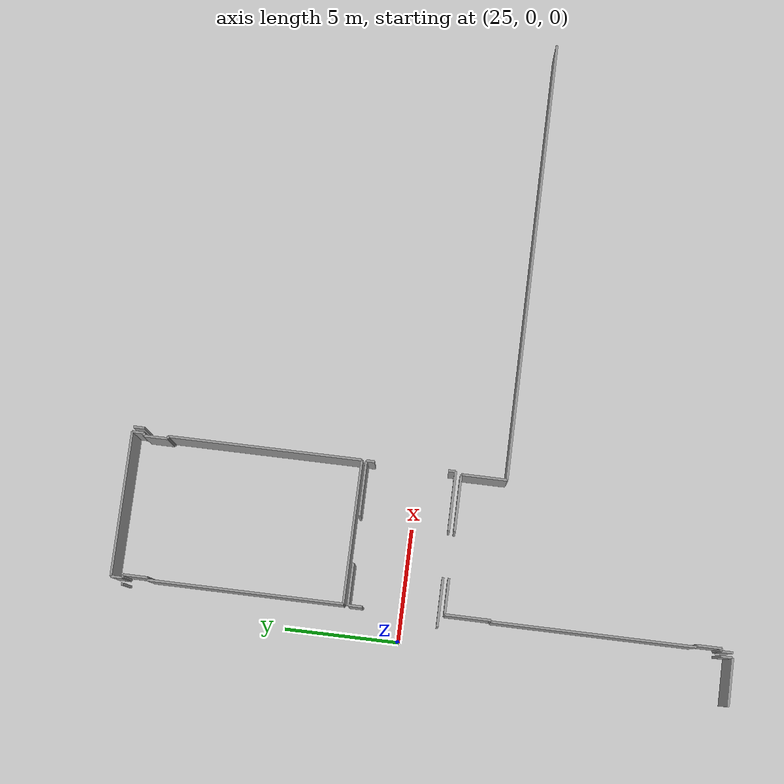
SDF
<sdf version="1.6">
 <world name="default">
  <model name="ground_plane">
   <static>1</static>
   <link name="link">
    <collision name="collision">
     <geometry><plane><normal>0 0 1</normal><size>100 100</size></plane></geometry>
     <surface><friction><ode><mu>100</mu><mu2>50</mu2></ode></friction></surface>
    </collision>
    <visual name="visual">
     <cast_shadows>0</cast_shadows>
     <geometry><plane><normal>0 0 1</normal><size>100 100</size></plane></geometry>
     <material>
      <script><uri>file://media/materials/scripts/gazebo.material</uri><name>Gazebo/Grey</name></script>
     </material>
    </visual>
   </link>
  </model>
  <model name="0510040946_A-40">
   <static>1</static>
   <link name="Wall_152">
    <collision name="Wall_152_Collision">
     <geometry><box><size>0.108435797764 0.1 2.5</size></box></geometry>
     <pose>0.054217898882 0 1.25 0 0 0</pose>
    </collision>
    <visual name="Wall_152_Visual">
     <pose>0.054217898882 0 1.25 0 0 0</pose>
     <geometry><box><size>0.108435797764 0.1 2.5</size></box></geometry>
     <material>
      <script><uri>file://media/materials/scripts/gazebo.material</uri><name>Gazebo/Grey</name></script>
      <ambient>1 1 1 1</ambient>
     </material>
    </visual>
    <pose>84.4169514956 -0.542305814315 0 0 0 3.14159265359</pose>
   </link>
   <link name="Wall_157">
    <collision name="Wall_157_Collision">
     <geometry><box><size>0.608762373412 0.1 2.5</size></box></geometry>
     <pose>0.304381186706 0 1.25 0 0 0</pose>
    </collision>
    <visual name="Wall_157_Visual">
     <pose>0.304381186706 0 1.25 0 0 0</pose>
     <geometry><box><size>0.608762373412 0.1 2.5</size></box></geometry>
     <material>
      <script><uri>file://media/materials/scripts/gazebo.material</uri><name>Gazebo/Grey</name></script>
      <ambient>1 1 1 1</ambient>
     </material>
    </visual>
    <pose>84.6420667483 -10.8241754758 0 0 0 1.57079632679</pose>
   </link>
   <link name="Wall_158">
    <collision name="Wall_158_Collision">
     <geometry><box><size>1.80117567233 0.1 2.5</size></box></geometry>
     <pose>0.900587836167 0 1.25 0 0 0</pose>
    </collision>
    <visual name="Wall_158_Visual">
     <pose>0.900587836167 0 1.25 0 0 0</pose>
     <geometry><box><size>1.80117567233 0.1 2.5</size></box></geometry>
     <material>
      <script><uri>file://media/materials/scripts/gazebo.material</uri><name>Gazebo/Grey</name></script>
      <ambient>1 1 1 1</ambient>
     </material>
    </visual>
    <pose>84.6420667483 -10.2154131023 0 0 0 0.0</pose>
   </link>
   <link name="Wall_159">
    <collision name="Wall_159_Collision">
     <geometry><box><size>2.39319708048 0.1 2.5</size></box></geometry>
     <pose>1.19659854024 0 1.25 0 0 0</pose>
    </collision>
    <visual name="Wall_159_Visual">
     <pose>1.19659854024 0 1.25 0 0 0</pose>
     <geometry><box><size>2.39319708048 0.1 2.5</size></box></geometry>
     <material>
      <script><uri>file://media/materials/scripts/gazebo.material</uri><name>Gazebo/Grey</name></script>
      <ambient>1 1 1 1</ambient>
     </material>
    </visual>
    <pose>88.4864011364 -10.2154131023 0 0 0 0.0</pose>
   </link>
   <link name="Wall_160">
    <collision name="Wall_160_Collision">
     <geometry><box><size>0.358662498335 0.1 2.5</size></box></geometry>
     <pose>0.179331249168 0 1.25 0 0 0</pose>
    </collision>
    <visual name="Wall_160_Visual">
     <pose>0.179331249168 0 1.25 0 0 0</pose>
     <geometry><box><size>0.358662498335 0.1 2.5</size></box></geometry>
     <material>
      <script><uri>file://media/materials/scripts/gazebo.material</uri><name>Gazebo/Grey</name></script>
      <ambient>1 1 1 1</ambient>
     </material>
    </visual>
    <pose>90.8795982168 -10.2154131023 0 0 0 -1.57079632679</pose>
   </link>
   <link name="Wall_161">
    <collision name="Wall_161_Collision">
     <geometry><box><size>0.316936910658 0.1 2.5</size></box></geometry>
     <pose>0.158468455329 0 1.25 0 0 0</pose>
    </collision>
    <visual name="Wall_161_Visual">
     <pose>0.158468455329 0 1.25 0 0 0</pose>
     <geometry><box><size>0.316936910658 0.1 2.5</size></box></geometry>
     <material>
      <script><uri>file://media/materials/scripts/gazebo.material</uri><name>Gazebo/Grey</name></script>
      <ambient>1 1 1 1</ambient>
     </material>
    </visual>
    <pose>90.8795982168 -13.7845361675 0 0 0 -1.57079632679</pose>
   </link>
   <link name="Wall_162">
    <collision name="Wall_162_Collision">
     <geometry><box><size>2.56834308833 0.1 2.5</size></box></geometry>
     <pose>1.28417154416 0 1.25 0 0 0</pose>
    </collision>
    <visual name="Wall_162_Visual">
     <pose>1.28417154416 0 1.25 0 0 0</pose>
     <geometry><box><size>2.56834308833 0.1 2.5</size></box></geometry>
     <material>
      <script><uri>file://media/materials/scripts/gazebo.material</uri><name>Gazebo/Grey</name></script>
      <ambient>1 1 1 1</ambient>
     </material>
    </visual>
    <pose>90.8795982168 -14.1014730781 0 0 0 3.14159265359</pose>
   </link>
   <link name="Wall_163">
    <collision name="Wall_163_Collision">
     <geometry><box><size>2.10543003355 0.1 2.5</size></box></geometry>
     <pose>1.05271501677 0 1.25 0 0 0</pose>
    </collision>
    <visual name="Wall_163_Visual">
     <pose>1.05271501677 0 1.25 0 0 0</pose>
     <geometry><box><size>2.10543003355 0.1 2.5</size></box></geometry>
     <material>
      <script><uri>file://media/materials/scripts/gazebo.material</uri><name>Gazebo/Grey</name></script>
      <ambient>1 1 1 1</ambient>
     </material>
    </visual>
    <pose>86.2975199275 -14.1014730781 0 0 0 3.14159265359</pose>
   </link>
   <link name="Wall_272">
    <collision name="Wall_272_Collision">
     <geometry><box><size>0.512628648611 0.1 2.5</size></box></geometry>
     <pose>0.256314324305 0 1.25 0 0 0</pose>
    </collision>
    <visual name="Wall_272_Visual">
     <pose>0.256314324305 0 1.25 0 0 0</pose>
     <geometry><box><size>0.512628648611 0.1 2.5</size></box></geometry>
     <material>
      <script><uri>file://media/materials/scripts/gazebo.material</uri><name>Gazebo/Grey</name></script>
      <ambient>1 1 1 1</ambient>
     </material>
    </visual>
    <pose>84.4194880055 -26.181728251 0 0 0 -1.57079632679</pose>
   </link>
   <link name="Wall_273">
    <collision name="Wall_273_Collision">
     <geometry><box><size>2.06725555971 0.1 2.5</size></box></geometry>
     <pose>1.03362777986 0 1.25 0 0 0</pose>
    </collision>
    <visual name="Wall_273_Visual">
     <pose>1.03362777986 0 1.25 0 0 0</pose>
     <geometry><box><size>2.06725555971 0.1 2.5</size></box></geometry>
     <material>
      <script><uri>file://media/materials/scripts/gazebo.material</uri><name>Gazebo/Grey</name></script>
      <ambient>1 1 1 1</ambient>
     </material>
    </visual>
    <pose>84.4194880055 -26.6943568996 0 0 0 3.14159265359</pose>
   </link>
   <link name="Wall_275">
    <collision name="Wall_275_Collision">
     <geometry><box><size>8.43592458956 0.1 2.5</size></box></geometry>
     <pose>4.21796229478 0 1.25 0 0 0</pose>
    </collision>
    <visual name="Wall_275_Visual">
     <pose>4.21796229478 0 1.25 0 0 0</pose>
     <geometry><box><size>8.43592458956 0.1 2.5</size></box></geometry>
     <material>
      <script><uri>file://media/materials/scripts/gazebo.material</uri><name>Gazebo/Grey</name></script>
      <ambient>1 1 1 1</ambient>
     </material>
    </visual>
    <pose>84.6660367667 -10.0041218286 0 0 0 1.57079632679</pose>
   </link>
   <link name="Wall_276">
    <collision name="Wall_276_Collision">
     <geometry><box><size>0.0960068993069 0.1 2.5</size></box></geometry>
     <pose>0.0480034496535 0 1.25 0 0 0</pose>
    </collision>
    <visual name="Wall_276_Visual">
     <pose>0.0480034496535 0 1.25 0 0 0</pose>
     <geometry><box><size>0.0960068993069 0.1 2.5</size></box></geometry>
     <material>
      <script><uri>file://media/materials/scripts/gazebo.material</uri><name>Gazebo/Grey</name></script>
      <ambient>1 1 1 1</ambient>
     </material>
    </visual>
    <pose>84.6660367667 -1.56819723901 0 0 0 0.0</pose>
   </link>
   <link name="Wall_277">
    <collision name="Wall_277_Collision">
     <geometry><box><size>1.04732493326 0.1 2.5</size></box></geometry>
     <pose>0.523662466629 0 1.25 0 0 0</pose>
    </collision>
    <visual name="Wall_277_Visual">
     <pose>0.523662466629 0 1.25 0 0 0</pose>
     <geometry><box><size>1.04732493326 0.1 2.5</size></box></geometry>
     <material>
      <script><uri>file://media/materials/scripts/gazebo.material</uri><name>Gazebo/Grey</name></script>
      <ambient>1 1 1 1</ambient>
     </material>
    </visual>
    <pose>84.762043666 -1.56819723901 0 0 0 1.57079632679</pose>
   </link>
   <link name="Wall_278">
    <collision name="Wall_278_Collision">
     <geometry><box><size>0.13164486325 0.1 2.5</size></box></geometry>
     <pose>0.0658224316252 0 1.25 0 0 0</pose>
    </collision>
    <visual name="Wall_278_Visual">
     <pose>0.0658224316252 0 1.25 0 0 0</pose>
     <geometry><box><size>0.13164486325 0.1 2.5</size></box></geometry>
     <material>
      <script><uri>file://media/materials/scripts/gazebo.material</uri><name>Gazebo/Grey</name></script>
      <ambient>1 1 1 1</ambient>
     </material>
    </visual>
    <pose>84.762043666 -0.520872305751 0 0 0 3.14159265359</pose>
   </link>
   <link name="Wall_279">
    <collision name="Wall_279_Collision">
     <geometry><box><size>0.515418809489 0.1 2.5</size></box></geometry>
     <pose>0.257709404745 0 1.25 0 0 0</pose>
    </collision>
    <visual name="Wall_279_Visual">
     <pose>0.257709404745 0 1.25 0 0 0</pose>
     <geometry><box><size>0.515418809489 0.1 2.5</size></box></geometry>
     <material>
      <script><uri>file://media/materials/scripts/gazebo.material</uri><name>Gazebo/Grey</name></script>
      <ambient>1 1 1 1</ambient>
     </material>
    </visual>
    <pose>84.6303988028 -0.520872305751 0 0 0 1.57079632679</pose>
   </link>
   <link name="Wall_280">
    <collision name="Wall_280_Collision">
     <geometry><box><size>6.2781156268 0.1 2.5</size></box></geometry>
     <pose>3.1390578134 0 1.25 0 0 0</pose>
    </collision>
    <visual name="Wall_280_Visual">
     <pose>3.1390578134 0 1.25 0 0 0</pose>
     <geometry><box><size>6.2781156268 0.1 2.5</size></box></geometry>
     <material>
      <script><uri>file://media/materials/scripts/gazebo.material</uri><name>Gazebo/Grey</name></script>
      <ambient>1 1 1 1</ambient>
     </material>
    </visual>
    <pose>84.6303988028 -0.00545349626182 0 0 0 0.0</pose>
   </link>
   <link name="Wall_281">
    <collision name="Wall_281_Collision">
     <geometry><box><size>0.520872305751 0.1 2.5</size></box></geometry>
     <pose>0.260436152875 0 1.25 0 0 0</pose>
    </collision>
    <visual name="Wall_281_Visual">
     <pose>0.260436152875 0 1.25 0 0 0</pose>
     <geometry><box><size>0.520872305751 0.1 2.5</size></box></geometry>
     <material>
      <script><uri>file://media/materials/scripts/gazebo.material</uri><name>Gazebo/Grey</name></script>
      <ambient>1 1 1 1</ambient>
     </material>
    </visual>
    <pose>90.9085144296 -0.00545349626182 0 0 0 -1.57079632679</pose>
   </link>
   <link name="Wall_282">
    <collision name="Wall_282_Collision">
     <geometry><box><size>0.120737870727 0.1 2.5</size></box></geometry>
     <pose>0.0603689353634 0 1.25 0 0 0</pose>
    </collision>
    <visual name="Wall_282_Visual">
     <pose>0.0603689353634 0 1.25 0 0 0</pose>
     <geometry><box><size>0.120737870727 0.1 2.5</size></box></geometry>
     <material>
      <script><uri>file://media/materials/scripts/gazebo.material</uri><name>Gazebo/Grey</name></script>
      <ambient>1 1 1 1</ambient>
     </material>
    </visual>
    <pose>90.9085144296 -0.526325802013 0 0 0 3.14159265359</pose>
   </link>
   <link name="Wall_283">
    <collision name="Wall_283_Collision">
     <geometry><box><size>1.05138334908 0.1 2.5</size></box></geometry>
     <pose>0.52569167454 0 1.25 0 0 0</pose>
    </collision>
    <visual name="Wall_283_Visual">
     <pose>0.52569167454 0 1.25 0 0 0</pose>
     <geometry><box><size>1.05138334908 0.1 2.5</size></box></geometry>
     <material>
      <script><uri>file://media/materials/scripts/gazebo.material</uri><name>Gazebo/Grey</name></script>
      <ambient>1 1 1 1</ambient>
     </material>
    </visual>
    <pose>90.7877765588 -0.526325802013 0 0 0 -1.57079632679</pose>
   </link>
   <link name="Wall_284">
    <collision name="Wall_284_Collision">
     <geometry><box><size>0.102601825019 0.1 2.5</size></box></geometry>
     <pose>0.0513009125094 0 1.25 0 0 0</pose>
    </collision>
    <visual name="Wall_284_Visual">
     <pose>0.0513009125094 0 1.25 0 0 0</pose>
     <geometry><box><size>0.102601825019 0.1 2.5</size></box></geometry>
     <material>
      <script><uri>file://media/materials/scripts/gazebo.material</uri><name>Gazebo/Grey</name></script>
      <ambient>1 1 1 1</ambient>
     </material>
    </visual>
    <pose>90.7877765588 -1.57770915109 0 0 0 0.0</pose>
   </link>
   <link name="Wall_285">
    <collision name="Wall_285_Collision">
     <geometry><box><size>8.44518285066 0.1 2.5</size></box></geometry>
     <pose>4.22259142533 0 1.25 0 0 0</pose>
    </collision>
    <visual name="Wall_285_Visual">
     <pose>4.22259142533 0 1.25 0 0 0</pose>
     <geometry><box><size>8.44518285066 0.1 2.5</size></box></geometry>
     <material>
      <script><uri>file://media/materials/scripts/gazebo.material</uri><name>Gazebo/Grey</name></script>
      <ambient>1 1 1 1</ambient>
     </material>
    </visual>
    <pose>90.8903783839 -1.57770915109 0 0 0 -1.57079632679</pose>
   </link>
   <link name="Wall_286">
    <collision name="Wall_286_Collision">
     <geometry><box><size>6.22436991883 0.1 2.5</size></box></geometry>
     <pose>3.11218495941 0 1.25 0 0 0</pose>
    </collision>
    <visual name="Wall_286_Visual">
     <pose>3.11218495941 0 1.25 0 0 0</pose>
     <geometry><box><size>6.22436991883 0.1 2.5</size></box></geometry>
     <material>
      <script><uri>file://media/materials/scripts/gazebo.material</uri><name>Gazebo/Grey</name></script>
      <ambient>1 1 1 1</ambient>
     </material>
    </visual>
    <pose>90.8903783839 -10.0228920018 0 0 0 3.13857705492</pose>
   </link>
   <link name="Wall_287">
    <collision name="Wall_287_Collision">
     <geometry><box><size>0.491068314553 0.1 2.5</size></box></geometry>
     <pose>0.245534157276 0 1.25 0 0 0</pose>
    </collision>
    <visual name="Wall_287_Visual">
     <pose>0.245534157276 0 1.25 0 0 0</pose>
     <geometry><box><size>0.491068314553 0.1 2.5</size></box></geometry>
     <material>
      <script><uri>file://media/materials/scripts/gazebo.material</uri><name>Gazebo/Grey</name></script>
      <ambient>1 1 1 1</ambient>
     </material>
    </visual>
    <pose>84.6301451518 -26.6850986385 0 0 0 1.57079632679</pose>
   </link>
   <link name="Wall_288">
    <collision name="Wall_288_Collision">
     <geometry><box><size>0.124035333583 0.1 2.5</size></box></geometry>
     <pose>0.0620176667914 0 1.25 0 0 0</pose>
    </collision>
    <visual name="Wall_288_Visual">
     <pose>0.0620176667914 0 1.25 0 0 0</pose>
     <geometry><box><size>0.124035333583 0.1 2.5</size></box></geometry>
     <material>
      <script><uri>file://media/materials/scripts/gazebo.material</uri><name>Gazebo/Grey</name></script>
      <ambient>1 1 1 1</ambient>
     </material>
    </visual>
    <pose>84.6301451518 -26.194030324 0 0 0 0.0</pose>
   </link>
   <link name="Wall_289">
    <collision name="Wall_289_Collision">
     <geometry><box><size>1.06317812007 0.1 2.5</size></box></geometry>
     <pose>0.531589060033 0 1.25 0 0 0</pose>
    </collision>
    <visual name="Wall_289_Visual">
     <pose>0.531589060033 0 1.25 0 0 0</pose>
     <geometry><box><size>1.06317812007 0.1 2.5</size></box></geometry>
     <material>
      <script><uri>file://media/materials/scripts/gazebo.material</uri><name>Gazebo/Grey</name></script>
      <ambient>1 1 1 1</ambient>
     </material>
    </visual>
    <pose>84.7541804854 -26.194030324 0 0 0 1.57079632679</pose>
   </link>
   <link name="Wall_290">
    <collision name="Wall_290_Collision">
     <geometry><box><size>0.0715295788759 0.1 2.5</size></box></geometry>
     <pose>0.035764789438 0 1.25 0 0 0</pose>
    </collision>
    <visual name="Wall_290_Visual">
     <pose>0.035764789438 0 1.25 0 0 0</pose>
     <geometry><box><size>0.0715295788759 0.1 2.5</size></box></geometry>
     <material>
      <script><uri>file://media/materials/scripts/gazebo.material</uri><name>Gazebo/Grey</name></script>
      <ambient>1 1 1 1</ambient>
     </material>
    </visual>
    <pose>84.7541804854 -25.1308522039 0 0 0 3.14159265359</pose>
   </link>
   <link name="Wall_291">
    <collision name="Wall_291_Collision">
     <geometry><box><size>8.79331883295 0.1 2.5</size></box></geometry>
     <pose>4.39665941648 0 1.25 0 0 0</pose>
    </collision>
    <visual name="Wall_291_Visual">
     <pose>4.39665941648 0 1.25 0 0 0</pose>
     <geometry><box><size>8.79331883295 0.1 2.5</size></box></geometry>
     <material>
      <script><uri>file://media/materials/scripts/gazebo.material</uri><name>Gazebo/Grey</name></script>
      <ambient>1 1 1 1</ambient>
     </material>
    </visual>
    <pose>84.6826509065 -25.1308522039 0 0 0 1.57079632679</pose>
   </link>
   <link name="Wall_292">
    <collision name="Wall_292_Collision">
     <geometry><box><size>0.0598616333855 0.1 2.5</size></box></geometry>
     <pose>0.0299308166928 0 1.25 0 0 0</pose>
    </collision>
    <visual name="Wall_292_Visual">
     <pose>0.0299308166928 0 1.25 0 0 0</pose>
     <geometry><box><size>0.0598616333855 0.1 2.5</size></box></geometry>
     <material>
      <script><uri>file://media/materials/scripts/gazebo.material</uri><name>Gazebo/Grey</name></script>
      <ambient>1 1 1 1</ambient>
     </material>
    </visual>
    <pose>84.6826509065 -16.337533371 0 0 0 0.0</pose>
   </link>
   <link name="Wall_293">
    <collision name="Wall_293_Collision">
     <geometry><box><size>1.98266295491 0.1 2.5</size></box></geometry>
     <pose>0.991331477454 0 1.25 0 0 0</pose>
    </collision>
    <visual name="Wall_293_Visual">
     <pose>0.991331477454 0 1.25 0 0 0</pose>
     <geometry><box><size>1.98266295491 0.1 2.5</size></box></geometry>
     <material>
      <script><uri>file://media/materials/scripts/gazebo.material</uri><name>Gazebo/Grey</name></script>
      <ambient>1 1 1 1</ambient>
     </material>
    </visual>
    <pose>84.7425125399 -16.337533371 0 0 0 1.57079632679</pose>
   </link>
   <link name="Wall_294">
    <collision name="Wall_294_Collision">
     <geometry><box><size>1.55640246802 0.1 2.5</size></box></geometry>
     <pose>0.778201234012 0 1.25 0 0 0</pose>
    </collision>
    <visual name="Wall_294_Visual">
     <pose>0.778201234012 0 1.25 0 0 0</pose>
     <geometry><box><size>1.55640246802 0.1 2.5</size></box></geometry>
     <material>
      <script><uri>file://media/materials/scripts/gazebo.material</uri><name>Gazebo/Grey</name></script>
      <ambient>1 1 1 1</ambient>
     </material>
    </visual>
    <pose>84.7425125399 -14.3548704161 0 0 0 0.0</pose>
   </link>
   <link name="Wall_295">
    <collision name="Wall_295_Collision">
     <geometry><box><size>2.47994571869 0.1 2.5</size></box></geometry>
     <pose>1.23997285934 0 1.25 0 0 0</pose>
    </collision>
    <visual name="Wall_295_Visual">
     <pose>1.23997285934 0 1.25 0 0 0</pose>
     <geometry><box><size>2.47994571869 0.1 2.5</size></box></geometry>
     <material>
      <script><uri>file://media/materials/scripts/gazebo.material</uri><name>Gazebo/Grey</name></script>
      <ambient>1 1 1 1</ambient>
     </material>
    </visual>
    <pose>88.2989530555 -14.3548704161 0 0 0 0.0</pose>
   </link>
   <link name="Wall_296">
    <collision name="Wall_296_Collision">
     <geometry><box><size>1.98596041776 0.1 2.5</size></box></geometry>
     <pose>0.992980208882 0 1.25 0 0 0</pose>
    </collision>
    <visual name="Wall_296_Visual">
     <pose>0.992980208882 0 1.25 0 0 0</pose>
     <geometry><box><size>1.98596041776 0.1 2.5</size></box></geometry>
     <material>
      <script><uri>file://media/materials/scripts/gazebo.material</uri><name>Gazebo/Grey</name></script>
      <ambient>1 1 1 1</ambient>
     </material>
    </visual>
    <pose>90.7788987742 -14.3548704161 0 0 0 -1.57079632679</pose>
   </link>
   <link name="Wall_297">
    <collision name="Wall_297_Collision">
     <geometry><box><size>19.701706437 0.1 2.5</size></box></geometry>
     <pose>9.85085321851 0 1.25 0 0 0</pose>
    </collision>
    <visual name="Wall_297_Visual">
     <pose>9.85085321851 0 1.25 0 0 0</pose>
     <geometry><box><size>19.701706437 0.1 2.5</size></box></geometry>
     <material>
      <script><uri>file://media/materials/scripts/gazebo.material</uri><name>Gazebo/Grey</name></script>
      <ambient>1 1 1 1</ambient>
     </material>
    </visual>
    <pose>90.7788987742 -16.3408308338 0 0 0 0.0</pose>
   </link>
   <link name="Wall_312">
    <collision name="Wall_312_Collision">
     <geometry><box><size>0.489165932136 0.1 2.5</size></box></geometry>
     <pose>0.244582966068 0 1.25 0 0 0</pose>
    </collision>
    <visual name="Wall_312_Visual">
     <pose>0.244582966068 0 1.25 0 0 0</pose>
     <geometry><box><size>0.489165932136 0.1 2.5</size></box></geometry>
     <material>
      <script><uri>file://media/materials/scripts/gazebo.material</uri><name>Gazebo/Grey</name></script>
      <ambient>1 1 1 1</ambient>
     </material>
    </visual>
    <pose>91.1239909447 -0.509711662238 0 0 0 1.57079632679</pose>
   </link>
   <pose>-58.35 12.510471347 0 0 0 0</pose>
  </model>
 </world>
</sdf>
